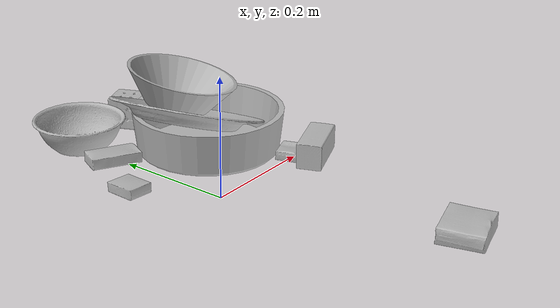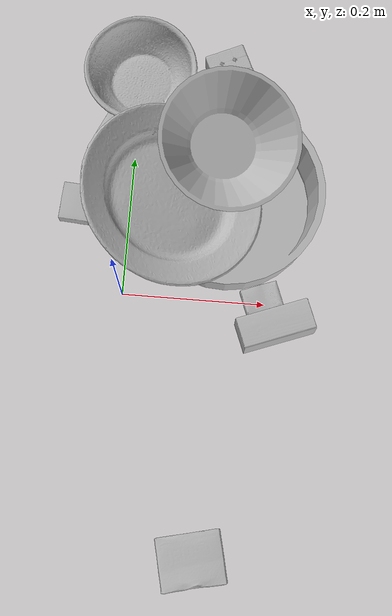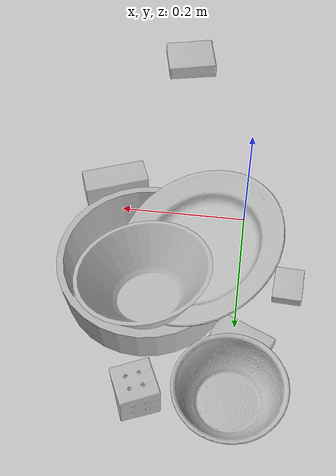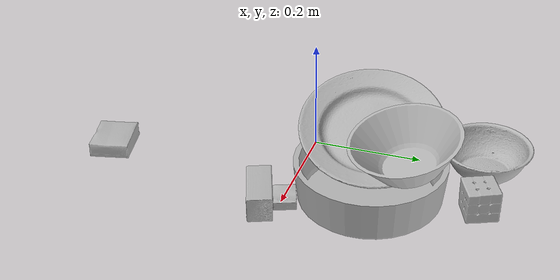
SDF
<sdf version="1.4">
  <world name="default">
    <light name="light1" type="point">
      <pose>0 0 1 0 0 0</pose>
      <diffuse>3 3 3 1</diffuse>
      <specular>3 3 3 1</specular>
    </light>
    <light name="light2" type="point">
      <pose>0 0.5 2 0 0 0</pose>
      <diffuse>1 1 1 1</diffuse>
      <specular>1 1 1 1</specular>
    </light>
    <light name="light3" type="point">
      <pose>0 0.5 2 0 0 0</pose>
      <diffuse>3 3 3 1</diffuse>
      <specular>3 3 3 1</specular>
    </light>
    <scene>
      <ambient>0.7 0.7 0.7</ambient>
    </scene>
    <model name="box1">
      <link name="link_box1">
        <collision name="default">
          <geometry>
            <mesh>
              <uri>model://cracker_box/collision_meshes/collision.obj</uri>
              <scale>0.25 0.25 0.25</scale>
            </mesh>
          </geometry>
          <surface>
            <friction>
              <ode>
                <mu>0.5</mu>
                <mu2>0.5</mu2>
              </ode>
            </friction>
          <contact>
        <ode>
            <max_vel>0</max_vel>
            <min_depth>0.0001</min_depth>
            <kp>1e8</kp>
        </ode>
    </contact></surface>
        </collision>
        <visual name="default">
          <geometry>
            <mesh>
              <uri>model://cracker_box/visual_meshes/visual.dae</uri>
              <scale>0.25 0.25 0.25</scale>
            </mesh>
          </geometry>
        </visual>
        <inertial>
          <mass>0.050503700971603394</mass>
          <pose>0.0002366037224419415 6.358561950037256e-05 -0.0004257383698131889 -0.00031620760376762643 -0.011106489600284392 0.0025467959332018085</pose>
          <inertia>
            <ixx>8.02868e-06</ixx>
            <iyy>1.3256925e-05</iyy>
            <izz>1.8918852e-05</izz>
            <ixy>0</ixy>
            <ixz>0</ixz>
            <iyz>0</iyz>
          </inertia>
        </inertial>
      </link>
      <pose>0.19613566994667053 0.005392659921199083 0.009120447561144829 -0.011788281467885034 -0.007367093412156848 -2.7801876985561687</pose>
    </model>
    <model name="box11">
      <link name="link_box11">
        <collision name="default">
          <geometry>
            <mesh>
              <uri>model://rubiks_cube/collision_meshes/collision.obj</uri>
              <scale>1.0 1.0 1.0</scale>
            </mesh>
          </geometry>
          <surface>
            <friction>
              <ode>
                <mu>0.5</mu>
                <mu2>0.5</mu2>
              </ode>
            </friction>
          <contact>
        <ode>
            <max_vel>0</max_vel>
            <min_depth>0.0001</min_depth>
            <kp>1e8</kp>
        </ode>
    </contact></surface>
        </collision>
        <visual name="default">
          <geometry>
            <mesh>
              <uri>model://rubiks_cube/visual_meshes/visual.dae</uri>
              <scale>1.0 1.0 1.0</scale>
            </mesh>
          </geometry>
        </visual>
        <inertial>
          <mass>0.15071694552898407</mass>
          <pose>2.6721043468569405e-05 5.2569666877388954e-05 -7.264316082000732e-06 -0.05467297119259296 -0.09814009057422186 -0.034453654418704155</pose>
          <inertia>
            <ixx>8.328124e-05</ixx>
            <iyy>8.2892846e-05</iyy>
            <izz>8.397135e-05</izz>
            <ixy>0</ixy>
            <ixz>0</ixz>
            <iyz>0</iyz>
          </inertia>
        </inertial>
      </link>
      <pose>0.12809215486049652 0.3282720744609833 0.028678983449935913 -2.3859474691025346e-06 -4.07817020794769e-07 1.9863736221149682</pose>
    </model>
    <model name="box2">
      <link name="link_box2">
        <collision name="default">
          <geometry>
            <mesh>
              <uri>model://gelatin_box/collision_meshes/collision.obj</uri>
              <scale>1.0 1.0 1.0</scale>
            </mesh>
          </geometry>
          <surface>
            <friction>
              <ode>
                <mu>0.5</mu>
                <mu2>0.5</mu2>
              </ode>
            </friction>
          <contact>
        <ode>
            <max_vel>0</max_vel>
            <min_depth>0.0001</min_depth>
            <kp>1e8</kp>
        </ode>
    </contact></surface>
        </collision>
        <visual name="default">
          <geometry>
            <mesh>
              <uri>model://gelatin_box/visual_meshes/visual.dae</uri>
              <scale>1.0 1.0 1.0</scale>
            </mesh>
          </geometry>
        </visual>
        <inertial>
          <mass>0.24173277616500854</mass>
          <pose>0.00043196187471039593 0.00011156872642459348 -0.0003640321083366871 -0.001050371835386973 -0.004755817297158009 0.016440553881960234</pose>
          <inertia>
            <ixx>0.00017064363</ixx>
            <iyy>0.00012188985</iyy>
            <izz>0.00025975762</izz>
            <ixy>0</ixy>
            <ixz>0</ixz>
            <iyz>0</iyz>
          </inertia>
        </inertial>
      </link>
      <pose>0.12546730041503906 -0.35490286350250244 0.015168310143053532 0.005597397214938441 -0.007304472350685159 -1.3566323355226129</pose>
    </model>
    <model name="box21">
      <link name="link_box21">
        <collision name="default">
          <geometry>
            <mesh>
              <uri>model://wood_block/collision_meshes/collision.obj</uri>
              <scale>0.5 0.5 0.5</scale>
            </mesh>
          </geometry>
          <surface>
            <friction>
              <ode>
                <mu>0.5</mu>
                <mu2>0.5</mu2>
              </ode>
            </friction>
          <contact>
        <ode>
            <max_vel>0</max_vel>
            <min_depth>0.0001</min_depth>
            <kp>1e8</kp>
        </ode>
    </contact></surface>
        </collision>
        <visual name="default">
          <geometry>
            <mesh>
              <uri>model://wood_block/visual_meshes/visual.dae</uri>
              <scale>0.5 0.5 0.5</scale>
            </mesh>
          </geometry>
        </visual>
        <inertial>
          <mass>0.16252566874027252</mass>
          <pose>-2.906657982748584e-06 -0.000285404734313488 0.00013204291462898254 -0.05220975528683206 -0.005192696037335319 -0.006861378846526553</pose>
          <inertia>
            <ixx>5.437098e-05</ixx>
            <iyy>0.00017175796</iyy>
            <izz>0.00017111548</izz>
            <ixy>0</ixy>
            <ixz>0</ixz>
            <iyz>0</iyz>
          </inertia>
        </inertial>
      </link>
      <pose>0.2161674201488495 -0.03251389041543007 0.022629264742136 -0.005208511474718384 0.005718742706479485 0.3649873619467367</pose>
    </model>
    <model name="box3">
      <link name="link_box3">
        <collision name="default">
          <geometry>
            <mesh>
              <uri>model://pudding_box/collision_meshes/collision.obj</uri>
              <scale>0.5 0.5 0.5</scale>
            </mesh>
          </geometry>
          <surface>
            <friction>
              <ode>
                <mu>0.5</mu>
                <mu2>0.5</mu2>
              </ode>
            </friction>
          <contact>
        <ode>
            <max_vel>0</max_vel>
            <min_depth>0.0001</min_depth>
            <kp>1e8</kp>
        </ode>
    </contact></surface>
        </collision>
        <visual name="default">
          <geometry>
            <mesh>
              <uri>model://pudding_box/visual_meshes/visual.dae</uri>
              <scale>0.5 0.5 0.5</scale>
            </mesh>
          </geometry>
        </visual>
        <inertial>
          <mass>0.05576644837856293</mass>
          <pose>0.00024474109522998333 0.0004033942532259971 -0.0002594413817860186 0.005213101792545572 -0.006603798718575614 0.020079825159656634</pose>
          <inertia>
            <ixx>1.5760277e-05</ixx>
            <iyy>1.0603625e-05</iyy>
            <izz>2.3274164e-05</izz>
            <ixy>0</ixy>
            <ixz>0</ixz>
            <iyz>0</iyz>
          </inertia>
        </inertial>
      </link>
      <pose>-0.075578473508358 0.12483381479978561 0.009862897917628288 0.02234846753180688 -0.011391746200507015 3.0740841553315956</pose>
    </model>
    <model name="box31">
      <link name="link_box31">
        <collision name="default">
          <geometry>
            <mesh>
              <uri>model://sugar_box/collision_meshes/collision.obj</uri>
              <scale>0.5 0.5 0.5</scale>
            </mesh>
          </geometry>
          <surface>
            <friction>
              <ode>
                <mu>0.5</mu>
                <mu2>0.5</mu2>
              </ode>
            </friction>
          <contact>
        <ode>
            <max_vel>0</max_vel>
            <min_depth>0.0001</min_depth>
            <kp>1e8</kp>
        </ode>
    </contact></surface>
        </collision>
        <visual name="default">
          <geometry>
            <mesh>
              <uri>model://sugar_box/visual_meshes/visual.dae</uri>
              <scale>0.5 0.5 0.5</scale>
            </mesh>
          </geometry>
        </visual>
        <inertial>
          <mass>0.1100529357790947</mass>
          <pose>0.0005171863595023751 1.924554817378521e-05 -0.00018182402709499002 -0.00040462641680988955 0.001050663522315131 0.0026153787888612426</pose>
          <inertia>
            <ixx>2.2923945e-05</ixx>
            <iyy>7.409492e-05</iyy>
            <izz>8.870046e-05</izz>
            <ixy>0</ixy>
            <ixz>0</ixz>
            <iyz>0</iyz>
          </inertia>
        </inertial>
      </link>
      <pose>-0.011871244758367538 0.225770965218544 0.011399299837648869 0.0007754661880764281 -0.02343329834042134 2.7044556898856262</pose>
    </model>
    <model name="plate1">
      <link name="link_plate1">
        <collision name="default">
          <geometry>
            <mesh>
              <uri>model://pan_tefal/collision_meshes/collision.obj</uri>
              <scale>1.0 1.0 1.0</scale>
            </mesh>
          </geometry>
          <surface>
            <friction>
              <ode>
                <mu>0.5</mu>
                <mu2>0.5</mu2>
              </ode>
            </friction>
          <contact>
        <ode>
            <max_vel>0</max_vel>
            <min_depth>0.0001</min_depth>
            <kp>1e8</kp>
        </ode>
    </contact></surface>
        </collision>
        <visual name="default">
          <geometry>
            <mesh>
              <uri>model://pan_tefal/visual_meshes/visual.dae</uri>
              <scale>1.0 1.0 1.0</scale>
            </mesh>
          </geometry>
        </visual>
        <inertial>
          <mass>1.207520604133606</mass>
          <pose>-0.00018002177239395678 3.2792409911053255e-05 -0.00851493701338768 0.0008190288495961148 -0.0003301407263612178 -0.3318541272495768</pose>
          <inertia>
            <ixx>0.008335457</ixx>
            <iyy>0.008389196</iyy>
            <izz>0.015343971</izz>
            <ixy>0</ixy>
            <ixz>0</ixz>
            <iyz>0</iyz>
          </inertia>
        </inertial>
      </link>
      <pose>0.13796775043010712 0.14102329313755035 0.03805014118552208 -2.114401804529527e-06 -1.8046608456517347e-06 2.0264937871792177</pose>
    </model>
    <model name="bowl1">
      <link name="link_bowl1">
        <collision name="default">
          <geometry>
            <mesh>
              <uri>model://bowl/collision_meshes/collision.obj</uri>
              <scale>1.0 1.0 1.0</scale>
            </mesh>
          </geometry>
          <surface>
            <friction>
              <ode>
                <mu>0.5</mu>
                <mu2>0.5</mu2>
              </ode>
            </friction>
          <contact>
        <ode>
            <max_vel>0</max_vel>
            <min_depth>0.0001</min_depth>
            <kp>1e8</kp>
        </ode>
    </contact></surface>
        </collision>
        <visual name="default">
          <geometry>
            <mesh>
              <uri>model://bowl/visual_meshes/visual.dae</uri>
              <scale>1.0 1.0 1.0</scale>
            </mesh>
          </geometry>
        </visual>
        <inertial>
          <mass>0.09256309270858765</mass>
          <pose>0.00020445158588699996 -0.001030202372930944 -0.0008042642730288208 -0.015764073075752352 0.01454679669645375 0.7140412125775129</pose>
          <inertia>
            <ixx>0.00021262471</ixx>
            <iyy>0.00020787389</iyy>
            <izz>0.00035770793</izz>
            <ixy>0</ixy>
            <ixz>0</ixz>
            <iyz>0</iyz>
          </inertia>
        </inertial>
      </link>
      <pose>-0.0003089086967520416 0.3194330632686615 0.02778000943362713 -4.110890863828771e-08 -5.250373117591692e-08 -1.2468592229094715</pose>
    </model>
    <model name="plate2">
      <link name="link_plate2">
        <collision name="default">
          <geometry>
            <mesh>
              <uri>model://plate/collision_meshes/collision.obj</uri>
              <scale>1.0 1.0 1.0</scale>
            </mesh>
          </geometry>
          <surface>
            <friction>
              <ode>
                <mu>0.5</mu>
                <mu2>0.5</mu2>
              </ode>
            </friction>
          <contact>
        <ode>
            <max_vel>0</max_vel>
            <min_depth>0.0001</min_depth>
            <kp>1e8</kp>
        </ode>
    </contact></surface>
        </collision>
        <visual name="default">
          <geometry>
            <mesh>
              <uri>model://plate/visual_meshes/visual.dae</uri>
              <scale>1.0 1.0 1.0</scale>
            </mesh>
          </geometry>
        </visual>
        <inertial>
          <mass>0.22150008380413055</mass>
          <pose>-0.0006044640904292464 0.0002782581141218543 -0.0010561984963715076 0.0022187839711676756 -0.00322547471274247 0.4526095389577293</pose>
          <inertia>
            <ixx>0.0010361817</ixx>
            <iyy>0.0010262709</iyy>
            <izz>0.0020266173</izz>
            <ixy>0</ixy>
            <ixz>0</ixz>
            <iyz>0</iyz>
          </inertia>
        </inertial>
      </link>
      <pose>0.06048694625496864 0.12305571883916855 0.08798240125179291 -0.2294780593893536 0.30520854628971444 -0.42981442429068634</pose>
    </model>
    <model name="bowl2">
      <link name="link_bowl2">
        <collision name="default">
          <geometry>
            <mesh>
              <uri>model://bowl_a/collision_meshes/collision.obj</uri>
              <scale>1.0 1.0 1.0</scale>
            </mesh>
          </geometry>
          <surface>
            <friction>
              <ode>
                <mu>0.5</mu>
                <mu2>0.5</mu2>
              </ode>
            </friction>
          <contact>
        <ode>
            <max_vel>0</max_vel>
            <min_depth>0.0001</min_depth>
            <kp>1e8</kp>
        </ode>
    </contact></surface>
        </collision>
        <visual name="default">
          <geometry>
            <mesh>
              <uri>model://bowl_a/visual_meshes/visual.dae</uri>
              <scale>1.0 1.0 1.0</scale>
            </mesh>
          </geometry>
        </visual>
        <inertial>
          <mass>0.4869906008243561</mass>
          <pose>0.0002786735713016242 4.731232547783293e-05 -0.001376529224216938 -0.0009805388639875933 -0.0010938169956893674 -0.19123322132810686</pose>
          <inertia>
            <ixx>0.0013864844</ixx>
            <iyy>0.0013949967</iyy>
            <izz>0.0024659163</izz>
            <ixy>0</ixy>
            <ixz>0</ixz>
            <iyz>0</iyz>
          </inertia>
        </inertial>
      </link>
      <pose>0.12999622523784637 0.20043207705020905 0.09680715948343277 -0.18301716801641857 -0.12366324344887357 -2.9598611736473446</pose>
    </model>
  <physics type="ode">
      <max_contacts>50</max_contacts>
      <ode>
        <solver>
          <type>quick</type>
          <iters>75</iters>
        </solver>
        <constraints>
          <contact_max_correcting_vel>0</contact_max_correcting_vel>
          <contact_surface_layer>0</contact_surface_layer>
        </constraints>
      </ode>
    </physics></world>
</sdf>
